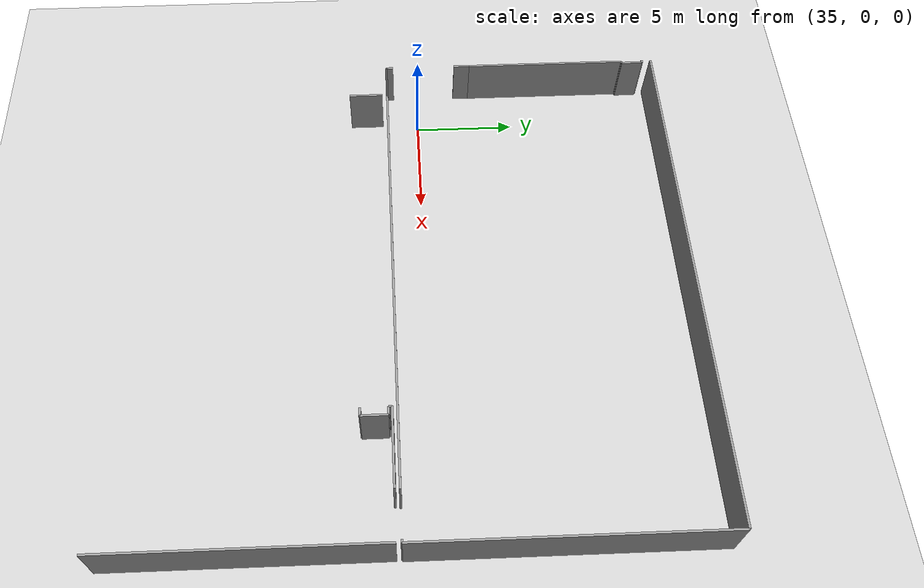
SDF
<sdf version="1.6">
 <world name="default">
  <model name="ground_plane">
   <static>1</static>
   <link name="link">
    <collision name="collision">
     <geometry><plane><normal>0 0 1</normal><size>100 100</size></plane></geometry>
     <surface><friction><ode><mu>100</mu><mu2>50</mu2></ode></friction></surface>
    </collision>
    <visual name="visual">
     <cast_shadows>0</cast_shadows>
     <geometry><plane><normal>0 0 1</normal><size>100 100</size></plane></geometry>
     <material>
      <script><uri>file://media/materials/scripts/gazebo.material</uri><name>Gazebo/Grey</name></script>
     </material>
    </visual>
   </link>
  </model>
  <model name="0510040941_A-40">
   <static>1</static>
   <link name="Wall_318">
    <collision name="Wall_318_Collision">
     <geometry><box><size>0.383910509661 0.1 2.5</size></box></geometry>
     <pose>0.191955254831 0 1.25 0 0 0</pose>
    </collision>
    <visual name="Wall_318_Visual">
     <pose>0.191955254831 0 1.25 0 0 0</pose>
     <geometry><box><size>0.383910509661 0.1 2.5</size></box></geometry>
     <material>
      <script><uri>file://media/materials/scripts/gazebo.material</uri><name>Gazebo/Grey</name></script>
      <ambient>1 1 1 1</ambient>
     </material>
    </visual>
    <pose>110.736684571 -15.7537747395 0 0 0 0.0</pose>
   </link>
   <link name="Wall_319">
    <collision name="Wall_319_Collision">
     <geometry><box><size>1.24672623388 0.1 2.5</size></box></geometry>
     <pose>0.623363116942 0 1.25 0 0 0</pose>
    </collision>
    <visual name="Wall_319_Visual">
     <pose>0.623363116942 0 1.25 0 0 0</pose>
     <geometry><box><size>1.24672623388 0.1 2.5</size></box></geometry>
     <material>
      <script><uri>file://media/materials/scripts/gazebo.material</uri><name>Gazebo/Grey</name></script>
      <ambient>1 1 1 1</ambient>
     </material>
    </visual>
    <pose>111.12059508 -15.7537747395 0 0 0 1.57079632679</pose>
   </link>
   <link name="Wall_320">
    <collision name="Wall_320_Collision">
     <geometry><box><size>0.393422663022 0.1 2.5</size></box></geometry>
     <pose>0.196711331511 0 1.25 0 0 0</pose>
    </collision>
    <visual name="Wall_320_Visual">
     <pose>0.196711331511 0 1.25 0 0 0</pose>
     <geometry><box><size>0.393422663022 0.1 2.5</size></box></geometry>
     <material>
      <script><uri>file://media/materials/scripts/gazebo.material</uri><name>Gazebo/Grey</name></script>
      <ambient>1 1 1 1</ambient>
     </material>
    </visual>
    <pose>111.12059508 -14.5070485056 0 0 0 3.14159265359</pose>
   </link>
   <link name="Wall_321">
    <collision name="Wall_321_Collision">
     <geometry><box><size>0.153462740895 0.1 2.5</size></box></geometry>
     <pose>0.0767313704476 0 1.25 0 0 0</pose>
    </collision>
    <visual name="Wall_321_Visual">
     <pose>0.0767313704476 0 1.25 0 0 0</pose>
     <geometry><box><size>0.153462740895 0.1 2.5</size></box></geometry>
     <material>
      <script><uri>file://media/materials/scripts/gazebo.material</uri><name>Gazebo/Grey</name></script>
      <ambient>1 1 1 1</ambient>
     </material>
    </visual>
    <pose>110.727172417 -14.5070485056 0 0 0 1.57079632679</pose>
   </link>
   <link name="Wall_322">
    <collision name="Wall_322_Collision">
     <geometry><box><size>3.71126175544 0.1 2.5</size></box></geometry>
     <pose>1.85563087772 0 1.25 0 0 0</pose>
    </collision>
    <visual name="Wall_322_Visual">
     <pose>1.85563087772 0 1.25 0 0 0</pose>
     <geometry><box><size>3.71126175544 0.1 2.5</size></box></geometry>
     <material>
      <script><uri>file://media/materials/scripts/gazebo.material</uri><name>Gazebo/Grey</name></script>
      <ambient>1 1 1 1</ambient>
     </material>
    </visual>
    <pose>110.727172417 -14.3535857647 0 0 0 0.0</pose>
   </link>
   <link name="Wall_323">
    <collision name="Wall_323_Collision">
     <geometry><box><size>12.7358855498 0.1 2.5</size></box></geometry>
     <pose>6.36794277489 0 1.25 0 0 0</pose>
    </collision>
    <visual name="Wall_323_Visual">
     <pose>6.36794277489 0 1.25 0 0 0</pose>
     <geometry><box><size>12.7358855498 0.1 2.5</size></box></geometry>
     <material>
      <script><uri>file://media/materials/scripts/gazebo.material</uri><name>Gazebo/Grey</name></script>
      <ambient>1 1 1 1</ambient>
     </material>
    </visual>
    <pose>116.721350979 -14.3535857647 0 0 0 -1.57079632679</pose>
   </link>
   <link name="Wall_329">
    <collision name="Wall_329_Collision">
     <geometry><box><size>8.14316424952 0.1 2.5</size></box></geometry>
     <pose>4.07158212476 0 1.25 0 0 0</pose>
    </collision>
    <visual name="Wall_329_Visual">
     <pose>4.07158212476 0 1.25 0 0 0</pose>
     <geometry><box><size>8.14316424952 0.1 2.5</size></box></geometry>
     <material>
      <script><uri>file://media/materials/scripts/gazebo.material</uri><name>Gazebo/Grey</name></script>
      <ambient>1 1 1 1</ambient>
     </material>
    </visual>
    <pose>91.1577558928 -9.71393784125 0 0 0 1.57079632679</pose>
   </link>
   <link name="Wall_330">
    <collision name="Wall_330_Collision">
     <geometry><box><size>0.0961361633046 0.1 2.5</size></box></geometry>
     <pose>0.0480680816523 0 1.25 0 0 0</pose>
    </collision>
    <visual name="Wall_330_Visual">
     <pose>0.0480680816523 0 1.25 0 0 0</pose>
     <geometry><box><size>0.0961361633046 0.1 2.5</size></box></geometry>
     <material>
      <script><uri>file://media/materials/scripts/gazebo.material</uri><name>Gazebo/Grey</name></script>
      <ambient>1 1 1 1</ambient>
     </material>
    </visual>
    <pose>91.1577558928 -1.57077359173 0 0 0 0.0</pose>
   </link>
   <link name="Wall_331">
    <collision name="Wall_331_Collision">
     <geometry><box><size>1.08400499705 0.1 2.5</size></box></geometry>
     <pose>0.542002498526 0 1.25 0 0 0</pose>
    </collision>
    <visual name="Wall_331_Visual">
     <pose>0.542002498526 0 1.25 0 0 0</pose>
     <geometry><box><size>1.08400499705 0.1 2.5</size></box></geometry>
     <material>
      <script><uri>file://media/materials/scripts/gazebo.material</uri><name>Gazebo/Grey</name></script>
      <ambient>1 1 1 1</ambient>
     </material>
    </visual>
    <pose>91.2538920561 -1.57077359173 0 0 0 1.57079632679</pose>
   </link>
   <link name="Wall_332">
    <collision name="Wall_332_Collision">
     <geometry><box><size>0.116809243276 0.1 2.5</size></box></geometry>
     <pose>0.0584046216382 0 1.25 0 0 0</pose>
    </collision>
    <visual name="Wall_332_Visual">
     <pose>0.0584046216382 0 1.25 0 0 0</pose>
     <geometry><box><size>0.116809243276 0.1 2.5</size></box></geometry>
     <material>
      <script><uri>file://media/materials/scripts/gazebo.material</uri><name>Gazebo/Grey</name></script>
      <ambient>1 1 1 1</ambient>
     </material>
    </visual>
    <pose>91.2538920561 -0.486768594674 0 0 0 3.14159265359</pose>
   </link>
   <link name="Wall_334">
    <collision name="Wall_334_Collision">
     <geometry><box><size>25.6032924734 0.1 2.5</size></box></geometry>
     <pose>12.8016462367 0 1.25 0 0 0</pose>
    </collision>
    <visual name="Wall_334_Visual">
     <pose>12.8016462367 0 1.25 0 0 0</pose>
     <geometry><box><size>25.6032924734 0.1 2.5</size></box></geometry>
     <material>
      <script><uri>file://media/materials/scripts/gazebo.material</uri><name>Gazebo/Grey</name></script>
      <ambient>1 1 1 1</ambient>
     </material>
    </visual>
    <pose>91.1370828128 -0.0197852789915 0 0 0 0.0</pose>
   </link>
   <link name="Wall_335">
    <collision name="Wall_335_Collision">
     <geometry><box><size>14.0951088507 0.1 2.5</size></box></geometry>
     <pose>7.04755442537 0 1.25 0 0 0</pose>
    </collision>
    <visual name="Wall_335_Visual">
     <pose>7.04755442537 0 1.25 0 0 0</pose>
     <geometry><box><size>14.0951088507 0.1 2.5</size></box></geometry>
     <material>
      <script><uri>file://media/materials/scripts/gazebo.material</uri><name>Gazebo/Grey</name></script>
      <ambient>1 1 1 1</ambient>
     </material>
    </visual>
    <pose>116.740375286 -0.0197852789915 0 0 0 -1.57079632679</pose>
   </link>
   <link name="Wall_336">
    <collision name="Wall_336_Collision">
     <geometry><box><size>0.140779869747 0.1 2.5</size></box></geometry>
     <pose>0.0703899348735 0 1.25 0 0 0</pose>
    </collision>
    <visual name="Wall_336_Visual">
     <pose>0.0703899348735 0 1.25 0 0 0</pose>
     <geometry><box><size>0.140779869747 0.1 2.5</size></box></geometry>
     <material>
      <script><uri>file://media/materials/scripts/gazebo.material</uri><name>Gazebo/Grey</name></script>
      <ambient>1 1 1 1</ambient>
     </material>
    </visual>
    <pose>116.740375286 -14.1148941297 0 0 0 3.14159265359</pose>
   </link>
   <link name="Wall_337">
    <collision name="Wall_337_Collision">
     <geometry><box><size>21.4033596926 0.1 2.5</size></box></geometry>
     <pose>10.7016798463 0 1.25 0 0 0</pose>
    </collision>
    <visual name="Wall_337_Visual">
     <pose>10.7016798463 0 1.25 0 0 0</pose>
     <geometry><box><size>21.4033596926 0.1 2.5</size></box></geometry>
     <material>
      <script><uri>file://media/materials/scripts/gazebo.material</uri><name>Gazebo/Grey</name></script>
      <ambient>1 1 1 1</ambient>
     </material>
    </visual>
    <pose>114.47901936 -14.1148941297 0 0 0 3.14159265359</pose>
   </link>
   <link name="Wall_338">
    <collision name="Wall_338_Collision">
     <geometry><box><size>0.0750825971983 0.1 2.5</size></box></geometry>
     <pose>0.0375412985992 0 1.25 0 0 0</pose>
    </collision>
    <visual name="Wall_338_Visual">
     <pose>0.0375412985992 0 1.25 0 0 0</pose>
     <geometry><box><size>0.0750825971983 0.1 2.5</size></box></geometry>
     <material>
      <script><uri>file://media/materials/scripts/gazebo.material</uri><name>Gazebo/Grey</name></script>
      <ambient>1 1 1 1</ambient>
     </material>
    </visual>
    <pose>91.220536105 -14.1148941297 0 0 0 3.14159265359</pose>
   </link>
   <link name="Wall_339">
    <collision name="Wall_339_Collision">
     <geometry><box><size>0.355120392154 0.1 2.5</size></box></geometry>
     <pose>0.177560196077 0 1.25 0 0 0</pose>
    </collision>
    <visual name="Wall_339_Visual">
     <pose>0.177560196077 0 1.25 0 0 0</pose>
     <geometry><box><size>0.355120392154 0.1 2.5</size></box></geometry>
     <material>
      <script><uri>file://media/materials/scripts/gazebo.material</uri><name>Gazebo/Grey</name></script>
      <ambient>1 1 1 1</ambient>
     </material>
    </visual>
    <pose>91.1454535078 -14.1148941297 0 0 0 1.57079632679</pose>
   </link>
   <link name="Wall_340">
    <collision name="Wall_340_Collision">
     <geometry><box><size>0.811796977154 0.1 2.5</size></box></geometry>
     <pose>0.405898488577 0 1.25 0 0 0</pose>
    </collision>
    <visual name="Wall_340_Visual">
     <pose>0.405898488577 0 1.25 0 0 0</pose>
     <geometry><box><size>0.811796977154 0.1 2.5</size></box></geometry>
     <material>
      <script><uri>file://media/materials/scripts/gazebo.material</uri><name>Gazebo/Grey</name></script>
      <ambient>1 1 1 1</ambient>
     </material>
    </visual>
    <pose>91.1454535078 -10.5256415947 0 0 0 1.55564123716</pose>
   </link>
   <link name="Wall_342">
    <collision name="Wall_342_Collision">
     <geometry><box><size>1.68847063598 0.1 2.5</size></box></geometry>
     <pose>0.844235317991 0 1.25 0 0 0</pose>
    </collision>
    <visual name="Wall_342_Visual">
     <pose>0.844235317991 0 1.25 0 0 0</pose>
     <geometry><box><size>1.68847063598 0.1 2.5</size></box></geometry>
     <material>
      <script><uri>file://media/materials/scripts/gazebo.material</uri><name>Gazebo/Grey</name></script>
      <ambient>1 1 1 1</ambient>
     </material>
    </visual>
    <pose>92.9967722093 -14.3740051873 0 0 0 -1.57079632679</pose>
   </link>
   <pose>-58.35 12.5394713145 0 0 0 0</pose>
  </model>
 </world>
</sdf>
